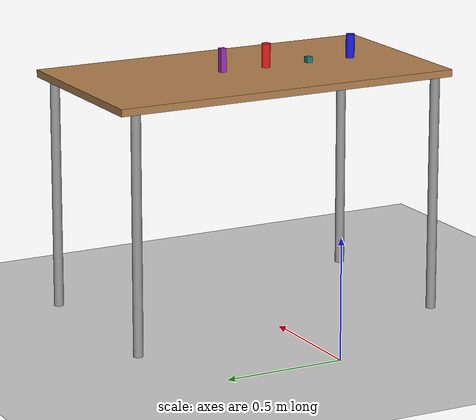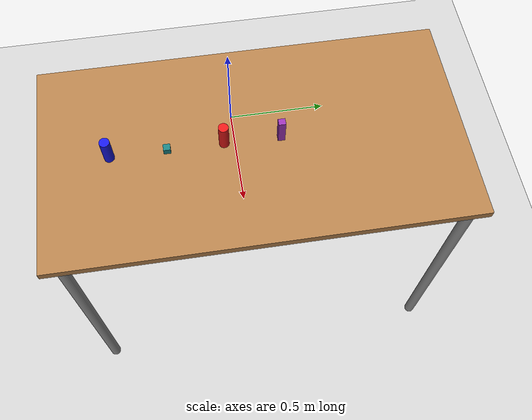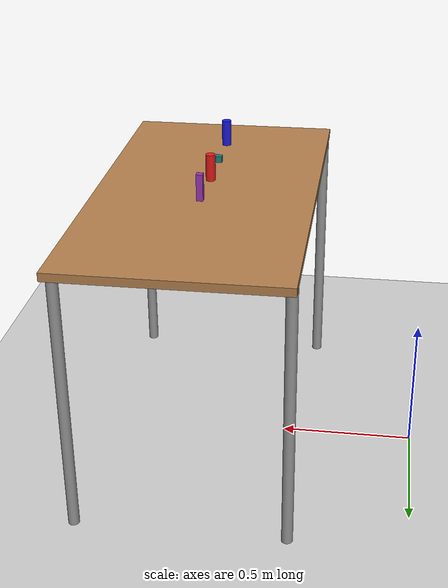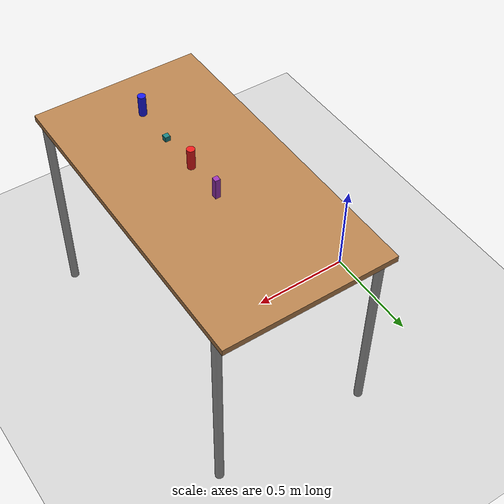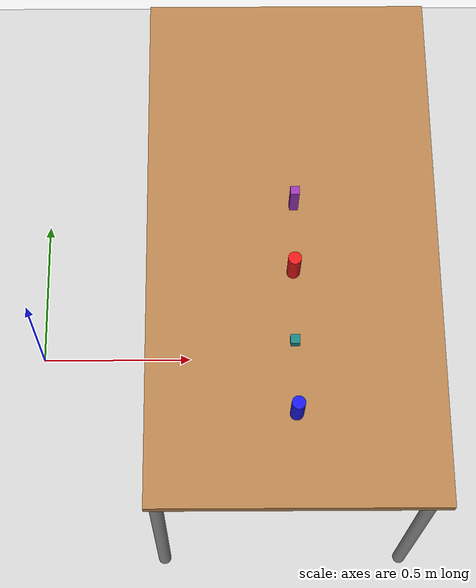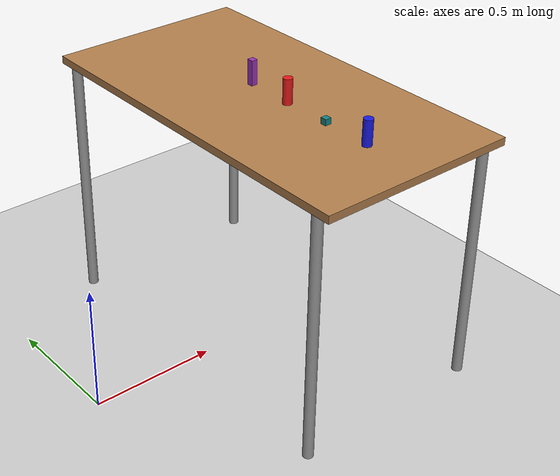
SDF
<sdf version="1.7">
 <world name="default">
  <light name="sun" type="directional">
   <pose>0 0 10 0 -0 0</pose>
   <diffuse>0.8 0.8 0.8 1</diffuse>
   <specular>0.2 0.2 0.2 1</specular>
   <attenuation>
    <range>1000</range>
    <constant>0.9</constant>
    <linear>0.01</linear>
    <quadratic>0.001</quadratic>
   </attenuation>
   <direction>-0.5 0.1 -0.9</direction>
   <spot><inner_angle>0</inner_angle><outer_angle>0</outer_angle><falloff>0</falloff></spot>
  </light>
  <model name="ground_plane">
   <static>1</static>
   <link name="link">
    <collision name="collision">
     <geometry><plane><normal>0 0 1</normal><size>100 100</size></plane></geometry>
     <surface>
      <contact><collide_bitmask>65535</collide_bitmask></contact>
      <friction><ode><mu>100</mu><mu2>50</mu2></ode></friction>
     </surface>
    </collision>
    <visual name="visual">
     <cast_shadows>0</cast_shadows>
     <geometry><plane><normal>0 0 1</normal><size>100 100</size></plane></geometry>
     <material>
      <script><uri>file://media/materials/scripts/gazebo.material</uri><name>Gazebo/Grey</name></script>
     </material>
    </visual>
   </link>
  </model>
  <gravity>0 0 -9.8</gravity>
  <magnetic_field>6e-06 2.3e-05 -4.2e-05</magnetic_field>
  <atmosphere type="adiabatic"/>
  <physics type="ode">
   <max_step_size>0.001</max_step_size>
   <real_time_factor>1</real_time_factor>
   <real_time_update_rate>1000</real_time_update_rate>
  </physics>
  <scene><ambient>0.4 0.4 0.4 1</ambient><background>0.7 0.7 0.7 1</background><shadows>1</shadows></scene>
  <spherical_coordinates>
   <surface_model>EARTH_WGS84</surface_model>
   <latitude_deg>0</latitude_deg>
   <longitude_deg>0</longitude_deg>
   <elevation>0</elevation>
   <heading_deg>0</heading_deg>
  </spherical_coordinates>
  <audio><device>default</device></audio>
  <model name="table">
   <static>1</static>
   <link name="link">
    <collision name="surface">
     <pose>0 0 1 0 -0 0</pose>
     <geometry><box><size>1.5 0.8 0.03</size></box></geometry>
     <surface><friction><ode><mu>0.6</mu><mu2>0.6</mu2></ode></friction></surface>
    </collision>
    <visual name="visual1">
     <pose>0 0 1 0 -0 0</pose>
     <geometry><box><size>1.5 0.8 0.03</size></box></geometry>
     <material>
      <script><uri>file://media/materials/scripts/gazebo.material</uri><name>Gazebo/Wood</name></script>
     </material>
    </visual>
    <collision name="front_left_leg">
     <pose>0.68 0.38 0.5 0 -0 0</pose>
     <geometry><cylinder><radius>0.02</radius><length>1</length></cylinder></geometry>
    </collision>
    <visual name="front_left_leg">
     <pose>0.68 0.38 0.5 0 -0 0</pose>
     <geometry><cylinder><radius>0.02</radius><length>1</length></cylinder></geometry>
     <material>
      <script><uri>file://media/materials/scripts/gazebo.material</uri><name>Gazebo/Grey</name></script>
     </material>
    </visual>
    <collision name="front_right_leg">
     <pose>0.68 -0.38 0.5 0 -0 0</pose>
     <geometry><cylinder><radius>0.02</radius><length>1</length></cylinder></geometry>
    </collision>
    <visual name="front_right_leg">
     <pose>0.68 -0.38 0.5 0 -0 0</pose>
     <geometry><cylinder><radius>0.02</radius><length>1</length></cylinder></geometry>
     <material>
      <script><uri>file://media/materials/scripts/gazebo.material</uri><name>Gazebo/Grey</name></script>
     </material>
    </visual>
    <collision name="back_right_leg">
     <pose>-0.68 -0.38 0.5 0 -0 0</pose>
     <geometry><cylinder><radius>0.02</radius><length>1</length></cylinder></geometry>
    </collision>
    <visual name="back_right_leg">
     <pose>-0.68 -0.38 0.5 0 -0 0</pose>
     <geometry><cylinder><radius>0.02</radius><length>1</length></cylinder></geometry>
     <material>
      <script><uri>file://media/materials/scripts/gazebo.material</uri><name>Gazebo/Grey</name></script>
     </material>
    </visual>
    <collision name="back_left_leg">
     <pose>-0.68 0.38 0.5 0 -0 0</pose>
     <geometry><cylinder><radius>0.02</radius><length>1</length></cylinder></geometry>
    </collision>
    <visual name="back_left_leg">
     <pose>-0.68 0.38 0.5 0 -0 0</pose>
     <geometry><cylinder><radius>0.02</radius><length>1</length></cylinder></geometry>
     <material>
      <script><uri>file://media/materials/scripts/gazebo.material</uri><name>Gazebo/Grey</name></script>
     </material>
    </visual>
   </link>
   <pose>0.8 0 0 0 0 -1.5708</pose>
  </model>
  <model name="cylinder_red">
   <link name="link">
    <inertial>
     <mass>0.653728</mass>
     <inertia>
      <ixx>0.000764155</ixx>
      <ixy>0</ixy>
      <ixz>0</ixz>
      <iyy>0.000764155</iyy>
      <iyz>0</iyz>
      <izz>0.000171643</izz>
     </inertia>
    </inertial>
    <visual name="visual">
     <geometry><cylinder><radius>0.018</radius><length>0.1</length></cylinder></geometry>
     <material>
      <ambient>0.9 0.1 0.1 1</ambient>
      <diffuse>0.9 0.1 0.1 1</diffuse>
      <specular>0.1 0.1 0.1 1</specular>
      <emissive>0 0 0 1</emissive>
     </material>
    </visual>
    <collision name="collision">
     <geometry><cylinder><radius>0.018</radius><length>0.1</length></cylinder></geometry>
     <surface>
      <friction>
       <ode><mu>500</mu><mu2>500</mu2><fdir1>0 0 0</fdir1><slip1>0</slip1><slip2>0</slip2></ode>
       <torsional>
        <coefficient>500</coefficient>
        <patch_radius>0.1</patch_radius>
        <surface_radius>0</surface_radius>
        <use_patch_radius>1</use_patch_radius>
        <ode><slip>0</slip></ode>
       </torsional>
      </friction>
      <bounce><restitution_coefficient>0</restitution_coefficient><threshold>1e+06</threshold></bounce>
      <contact>
       <collide_without_contact>0</collide_without_contact>
       <collide_without_contact_bitmask>1</collide_without_contact_bitmask>
       <collide_bitmask>1</collide_bitmask>
       <ode>
        <soft_cfm>0</soft_cfm>
        <soft_erp>0.2</soft_erp>
        <kp>1e+13</kp>
        <kd>1</kd>
        <max_vel>0.01</max_vel>
        <min_depth>0</min_depth>
       </ode>
       <bullet>
        <split_impulse>1</split_impulse>
        <split_impulse_penetration_threshold>-0.01</split_impulse_penetration_threshold>
        <soft_cfm>0</soft_cfm>
        <soft_erp>0.2</soft_erp>
        <kp>1e+13</kp>
        <kd>1</kd>
       </bullet>
      </contact>
     </surface>
    </collision>
   </link>
   <static>0</static>
   <pose>0.800001 -0.1 1.065 -2e-06 6e-06 0</pose>
  </model>
  <model name="cylinder_blue">
   <link name="link">
    <inertial>
     <mass>0.653728</mass>
     <inertia>
      <ixx>0.000764155</ixx>
      <ixy>0</ixy>
      <ixz>0</ixz>
      <iyy>0.000764155</iyy>
      <iyz>0</iyz>
      <izz>0.000171643</izz>
     </inertia>
    </inertial>
    <visual name="visual">
     <geometry><cylinder><radius>0.018</radius><length>0.1</length></cylinder></geometry>
     <material>
      <ambient>0.1 0.1 0.9 1</ambient>
      <diffuse>0.1 0.1 0.9 1</diffuse>
      <specular>0.1 0.1 0.1 1</specular>
      <emissive>0 0 0 1</emissive>
     </material>
    </visual>
    <collision name="collision">
     <geometry><cylinder><radius>0.018</radius><length>0.1</length></cylinder></geometry>
     <surface>
      <friction>
       <ode><mu>500</mu><mu2>500</mu2><fdir1>0 0 0</fdir1><slip1>0</slip1><slip2>0</slip2></ode>
       <torsional>
        <coefficient>500</coefficient>
        <patch_radius>0.1</patch_radius>
        <surface_radius>0</surface_radius>
        <use_patch_radius>1</use_patch_radius>
        <ode><slip>0</slip></ode>
       </torsional>
      </friction>
      <bounce><restitution_coefficient>0</restitution_coefficient><threshold>1e+06</threshold></bounce>
      <contact>
       <collide_without_contact>0</collide_without_contact>
       <collide_without_contact_bitmask>1</collide_without_contact_bitmask>
       <collide_bitmask>1</collide_bitmask>
       <ode>
        <soft_cfm>0</soft_cfm>
        <soft_erp>0.2</soft_erp>
        <kp>1e+13</kp>
        <kd>1</kd>
        <max_vel>0.01</max_vel>
        <min_depth>0</min_depth>
       </ode>
       <bullet>
        <split_impulse>1</split_impulse>
        <split_impulse_penetration_threshold>-0.01</split_impulse_penetration_threshold>
        <soft_cfm>0</soft_cfm>
        <soft_erp>0.2</soft_erp>
        <kp>1e+13</kp>
        <kd>1</kd>
       </bullet>
      </contact>
     </surface>
    </collision>
   </link>
   <static>0</static>
   <pose>0.800003 -0.500016 1.06499 -5e-06 -4e-06 8e-06</pose>
  </model>
  <model name="stone_10_2_5_1cm_0">
   <link name="link">
    <pose>-0 -0 0.005 0 -0 0</pose>
    <inertial>
     <mass>0.152068</mass>
     <inertia>
      <ixx>1.53283e-05</ixx>
      <ixy>0</ixy>
      <ixz>0</ixz>
      <iyy>0.000134131</iyy>
      <iyz>0</iyz>
      <izz>0.000134643</izz>
     </inertia>
    </inertial>
    <visual name="visual">
     <geometry><box><size>0.1 0.025 0.024178</size></box></geometry>
     <material>
      <script><uri>file://media/materials/scripts/gazebo.material</uri><name>Gazebo/Purple</name></script>
      <shader type="pixel"/>
     </material>
    </visual>
    <collision name="collision">
     <geometry><box><size>0.1 0.025 0.024178</size></box></geometry>
     <surface>
      <friction>
       <ode><mu>100</mu><mu2>50</mu2><fdir1>0 0 0</fdir1><slip1>0</slip1><slip2>0</slip2></ode>
       <torsional>
        <coefficient>1</coefficient>
        <patch_radius>0</patch_radius>
        <surface_radius>0.01</surface_radius>
        <use_patch_radius>0</use_patch_radius>
        <ode><slip>0</slip></ode>
       </torsional>
      </friction>
      <bounce><restitution_coefficient>0</restitution_coefficient><threshold>1e+06</threshold></bounce>
      <contact>
       <collide_without_contact>0</collide_without_contact>
       <collide_without_contact_bitmask>1</collide_without_contact_bitmask>
       <collide_bitmask>1</collide_bitmask>
       <ode>
        <soft_cfm>0</soft_cfm>
        <soft_erp>0.2</soft_erp>
        <kp>100000</kp>
        <kd>100</kd>
        <max_vel>100</max_vel>
        <min_depth>0.001</min_depth>
       </ode>
       <bullet>
        <split_impulse>1</split_impulse>
        <split_impulse_penetration_threshold>-0.01</split_impulse_penetration_threshold>
        <soft_cfm>0</soft_cfm>
        <soft_erp>0.2</soft_erp>
        <kp>100000</kp>
        <kd>100</kd>
       </bullet>
      </contact>
     </surface>
    </collision>
   </link>
   <static>0</static>
   <pose>0.8 0.1 1.064 3.14159 1.57079 3.14159</pose>
  </model>
  <model name="wood_cube">
   <link name="link">
    <pose>-0 -0 0.0125 0 -0 0</pose>
    <inertial>
     <mass>0.0073</mass>
     <inertia>
      <ixx>7.60417e-07</ixx>
      <ixy>0</ixy>
      <ixz>0</ixz>
      <iyy>7.60417e-07</iyy>
      <iyz>0</iyz>
      <izz>7.60417e-07</izz>
     </inertia>
    </inertial>
    <visual name="visual">
     <geometry><box><size>0.025 0.025 0.025</size></box></geometry>
     <material>
      <ambient>0.1 0.5 0.5 1</ambient>
      <diffuse>0.1 0.5 0.5 1</diffuse>
      <specular>0.1 0.1 0.1 1</specular>
      <emissive>0 0 0 1</emissive>
     </material>
    </visual>
    <collision name="collision">
     <geometry><box><size>0.025 0.025 0.025</size></box></geometry>
     <surface>
      <friction>
       <ode><mu>1</mu><mu2>1</mu2><fdir1>0 0 0</fdir1><slip1>0</slip1><slip2>0</slip2></ode>
       <torsional>
        <coefficient>1</coefficient>
        <patch_radius>0</patch_radius>
        <surface_radius>0.01</surface_radius>
        <use_patch_radius>0</use_patch_radius>
        <ode><slip>0</slip></ode>
       </torsional>
      </friction>
      <bounce><restitution_coefficient>0</restitution_coefficient><threshold>1e+06</threshold></bounce>
      <contact>
       <collide_without_contact>0</collide_without_contact>
       <collide_without_contact_bitmask>1</collide_without_contact_bitmask>
       <collide_bitmask>1</collide_bitmask>
       <ode>
        <soft_cfm>0</soft_cfm>
        <soft_erp>0.2</soft_erp>
        <kp>100000</kp>
        <kd>100</kd>
        <max_vel>100</max_vel>
        <min_depth>0.001</min_depth>
       </ode>
       <bullet>
        <split_impulse>1</split_impulse>
        <split_impulse_penetration_threshold>-0.01</split_impulse_penetration_threshold>
        <soft_cfm>0</soft_cfm>
        <soft_erp>0.2</soft_erp>
        <kp>100000</kp>
        <kd>100</kd>
       </bullet>
      </contact>
     </surface>
    </collision>
   </link>
   <static>0</static>
   <pose>0.8 -0.3 1.014 -2e-06 0 1e-06</pose>
  </model>
 </world>
</sdf>
